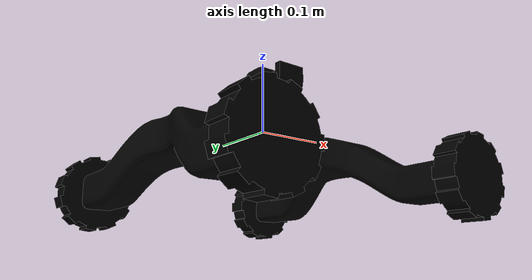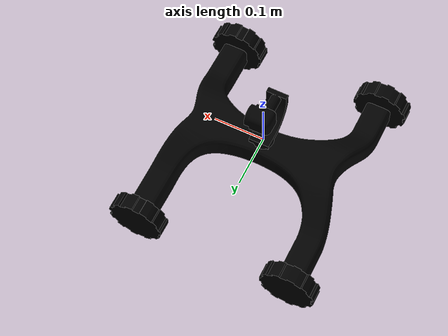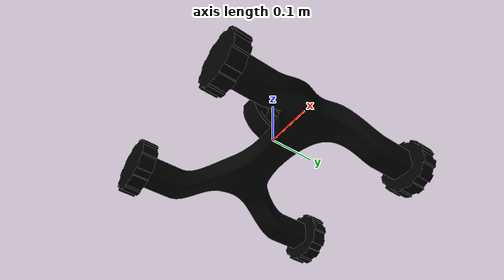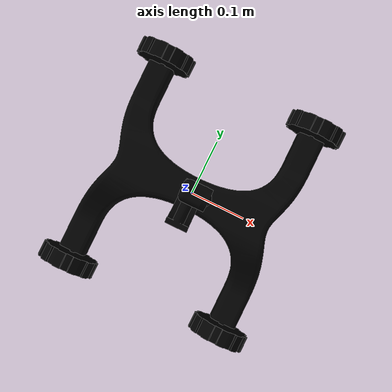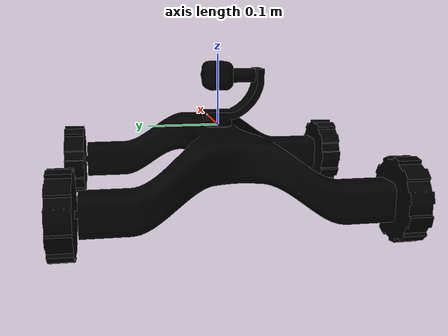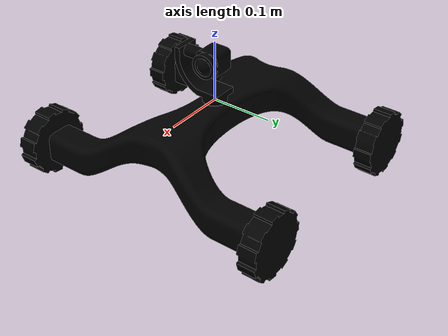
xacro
<?xml version="1.0"?>
<robot xmlns:xacro="http://www.ros.org/wiki/xacro" name="car">

    <xacro:include filename="car_core.urdf.xacro" />
    <xacro:include filename="gazebo_colors.xacro" />

    <xacro:include filename="ros2_control.xacro" />

    <xacro:include filename="lidar.xacro" />

</robot>

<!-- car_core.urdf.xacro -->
<robot name="camera_car_simple" version="1.0">
    <joint name="base_joint" type="fixed">
        <parent link="base_link"/>
        <child link="body"/>
        <origin rpy="0 0 0" xyz="0 0 0"/>
    </joint>
    <joint name="base_footprint_joint" type="fixed">
        <parent link="base_link"/>
        <child link="base_footprint"/>
        <origin rpy="0 0 0" xyz="0 0 0"/>
    </joint>
    <joint name="cam_joint" type="revolute">
        <limit lower="-3.14000" upper="3.14000" effort="100" velocity="100"/>
        <origin rpy="0 0 -0" xyz="0.02000 0 0.07000"/>
        <parent link="rotate"/>
        <child link="cam"/>
        <axis xyz="1.00000 0 0"/>
    </joint>
    <joint name="camera_sensor_link_joint" type="fixed">
        <origin rpy="0 0 -0" xyz="-0.02000 0.03499 -0.00083"/>
        <parent link="cam"/>
        <child link="camera_sensor_link"/>
    </joint>
    <joint name="rotate_joint" type="revolute">
        <limit lower="-3.14000" upper="3.14000" effort="100" velocity="100"/>
        <origin rpy="0 0 -1.57080" xyz="0 0 0"/>
        <parent link="body"/>
        <child link="rotate"/>
        <axis xyz="0 0 1.00000"/>
    </joint>
    <joint name="wheel_bl_joint" type="continuous">
        <limit lower="0" upper="0" effort="100" velocity="100"/>
        <origin rpy="0 0 -1.57080" xyz="-0.15500 0.20000 -0.07600"/>
        <parent link="body"/>
        <child link="wheel_bl"/>
        <axis xyz="-1.00000 0 0"/>
    </joint>
    <joint name="wheel_br_joint" type="continuous">
        <limit lower="0" upper="0" effort="100" velocity="100"/>
        <origin rpy="0 0 -1.57080" xyz="-0.15500 -0.20000 -0.07600"/>
        <parent link="body"/>
        <child link="wheel_br"/>
        <axis xyz="-1.00000 0 0"/>
    </joint>
    <joint name="wheel_fl_joint" type="continuous">
        <limit lower="0" upper="0" effort="100" velocity="100"/>
        <origin rpy="0 0 -1.57080" xyz="0.15500 0.20000 -0.07600"/>
        <parent link="body"/>
        <child link="wheel_fl"/>
        <axis xyz="-1.00000 0 0"/>
    </joint>
    <joint name="wheel_fr_joint" type="continuous">
        <limit lower="0" upper="0" effort="100" velocity="100"/>
        <origin rpy="0 0 -1.57080" xyz="0.15500 -0.20000 -0.07600"/>
        <parent link="body"/>
        <child link="wheel_fr"/>
        <axis xyz="-1.00000 0 0"/>
    </joint>
    <link name="base_link"/>
    <link name="base_footprint"/>
    <link name="body">
        <collision name="body_collision">
            <origin rpy="0 0 -1.57080" xyz="0 0 0"/>
            <geometry>
                <mesh filename="file:///home/yaroslav/ros2_ws/src/camera_car_simple/description/meshes/stl/body-mesh.stl" scale="1.00000 1.00000 1.00000"/>
            </geometry>
        </collision>
        <inertial>
            <inertia ixx="0.03987" ixy="0" ixz="0" iyy="0.02791" iyz="-0" izz="0.06464"/>
            <origin rpy="0 0 0" xyz="0 -0 -0.04608"/>
            <mass value="2.80800"/>
        </inertial>
        <visual name="body-obj">
            <origin rpy="0 0 -1.57080" xyz="0 0 0"/>
            <material name="Материал.001"/>
            <geometry>
                <mesh filename="file:///home/yaroslav/ros2_ws/src/camera_car_simple/description/meshes/stl/body-mesh.stl" scale="1.00000 1.00000 1.00000"/>
            </geometry>
        </visual>
    </link>
    <link name="cam">
        <collision name="cam_collision">
            <origin rpy="0 0 -0" xyz="-0.02282 0.00074 -0.00002"/>
            <geometry>
                <box size="0.04000 0.05486 0.04091"/>
            </geometry>
        </collision>
        <inertial>
            <inertia ixx="0.00008" ixy="0" ixz="-0" iyy="0.00006" iyz="0" izz="0.00008"/>
            <origin rpy="0 0 0" xyz="-0.02000 0.00520 -0.00012"/>
            <mass value="0.26000"/>
        </inertial>
        <visual name="cam-obj">
            <origin rpy="0 0 -0" xyz="0 0 0"/>
            <material name="Материал.001"/>
            <geometry>
                <mesh filename="file:///home/yaroslav/ros2_ws/src/camera_car_simple/description/meshes/stl/cam-mesh.stl" scale="1.00000 1.00000 1.00000"/>
            </geometry>
        </visual>
    </link>
    <link name="camera_sensor_link"/>
    <link name="rotate">
        <collision name="rotator_collision">
            <origin rpy="0 0 -0" xyz="0 0 0"/>
            <geometry>
                <mesh filename="file:///home/yaroslav/ros2_ws/src/camera_car_simple/description/meshes/stl/rotate-mesh.stl" scale="1.00000 1.00000 1.00000"/>
            </geometry>
        </collision>
        <inertial>
            <inertia ixx="0.00006" ixy="-0" ixz="-0.00004" iyy="0.00010" iyz="-0" izz="0.00006"/>
            <origin rpy="0 0 0" xyz="0.02599 -0 0.03366"/>
            <mass value="0.10400"/>
        </inertial>
        <visual name="rotate-obj">
            <origin rpy="0 0 -0" xyz="-0 0 0"/>
            <material name="Материал.001"/>
            <geometry>
                <mesh filename="file:///home/yaroslav/ros2_ws/src/camera_car_simple/description/meshes/stl/rotate-mesh.stl" scale="1.00000 1.00000 1.00000"/>
            </geometry>
        </visual>
    </link>
    <link name="wheel_bl">
        <collision name="wheel_bl_collision">
            <origin rpy="0 1.57080 0" xyz="-0.00989 -0.00004 0.00001"/>
            <geometry>
                <cylinder radius="0.05449" length="0.03000"/>
            </geometry>
        </collision>
        <inertial>
            <inertia ixx="0.00043" ixy="-0" ixz="0" iyy="0.00024" iyz="0" izz="0.00024"/>
            <origin rpy="0 0 0" xyz="-0.01002 -0.00025 0.00007"/>
            <mass value="0.31200"/>
        </inertial>
        <visual name="wheel_bl-obj">
            <origin rpy="0 0 -0" xyz="-0 -0 0"/>
            <material name="Материал.001"/>
            <geometry>
                <mesh filename="file:///home/yaroslav/ros2_ws/src/camera_car_simple/description/meshes/stl/wheel_bl-mesh.stl" scale="1.00000 1.00000 1.00000"/>
            </geometry>
        </visual>
    </link>
    <link name="wheel_br">
        <collision name="wheel_br_collision">
            <origin rpy="0 1.57080 0" xyz="0.00992 -0.00004 0.00001"/>
            <geometry>
                <cylinder radius="0.05449" length="0.03000"/>
            </geometry>
        </collision>
        <inertial>
            <inertia ixx="0.00043" ixy="0" ixz="-0" iyy="0.00024" iyz="0" izz="0.00024"/>
            <origin rpy="0 0 0" xyz="0.01002 -0.00025 0.00007"/>
            <mass value="0.31200"/>
        </inertial>
        <visual name="wheel_br-obj">
            <origin rpy="0 0 -0" xyz="0 -0 0"/>
            <material name="Материал.001"/>
            <geometry>
                <mesh filename="file:///home/yaroslav/ros2_ws/src/camera_car_simple/description/meshes/stl/wheel_br-mesh.stl" scale="1.00000 1.00000 1.00000"/>
            </geometry>
        </visual>
    </link>
    <link name="wheel_fl">
        <collision name="wheel_fl_collision">
            <origin rpy="0 1.57080 0" xyz="-0.01010 0.00004 0.00001"/>
            <geometry>
                <cylinder radius="0.05449" length="0.03000"/>
            </geometry>
        </collision>
        <inertial>
            <inertia ixx="0.00043" ixy="0" ixz="0" iyy="0.00024" iyz="-0" izz="0.00024"/>
            <origin rpy="0 0 0" xyz="-0.01002 0.00025 0.00007"/>
            <mass value="0.31200"/>
        </inertial>
        <visual name="wheel_fl-obj">
            <origin rpy="0 0 -0" xyz="-0 -0 0"/>
            <material name="Материал.001"/>
            <geometry>
                <mesh filename="file:///home/yaroslav/ros2_ws/src/camera_car_simple/description/meshes/stl/wheel_fl-mesh.stl" scale="1.00000 1.00000 1.00000"/>
            </geometry>
        </visual>
    </link>
    <link name="wheel_fr">
        <collision name="wheel_fr_collision">
            <origin rpy="0 1.57080 0" xyz="0.00999 0.00004 0.00001"/>
            <geometry>
                <cylinder radius="0.05449" length="0.03000"/>
            </geometry>
        </collision>
        <inertial>
            <inertia ixx="0.00043" ixy="-0" ixz="-0" iyy="0.00024" iyz="-0" izz="0.00024"/>
            <origin rpy="0 0 0" xyz="0.01002 0.00025 0.00007"/>
            <mass value="0.31200"/>
        </inertial>
        <visual name="wheel_fr-obj">
            <origin rpy="0 0 -0" xyz="0 0 0"/>
            <material name="Материал.001"/>
            <geometry>
                <mesh filename="file:///home/yaroslav/ros2_ws/src/camera_car_simple/description/meshes/stl/wheel_fr-mesh.stl" scale="1.00000 1.00000 1.00000"/>
            </geometry>
        </visual>
    </link>
    <material name="Материал.001">
        <color rgba="0 0 0 1.00000"/>
    </material>
</robot>
